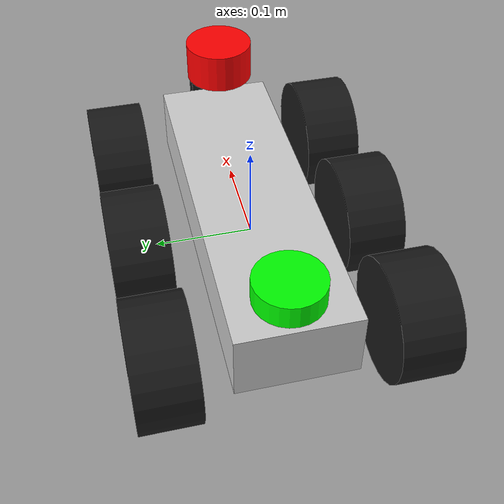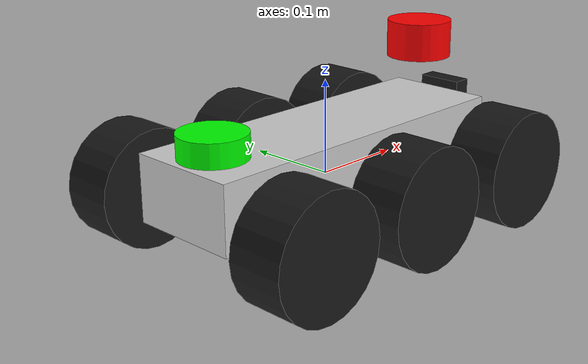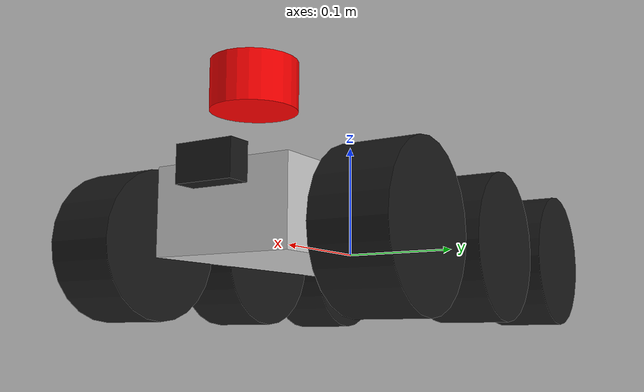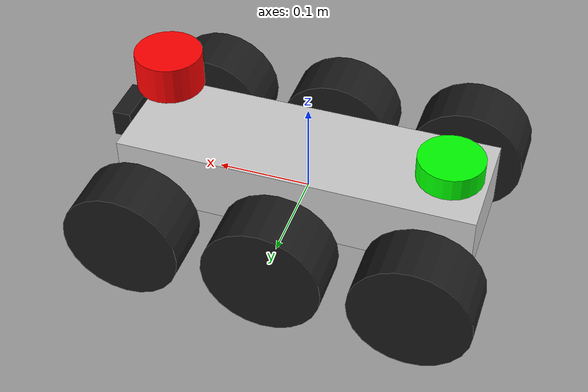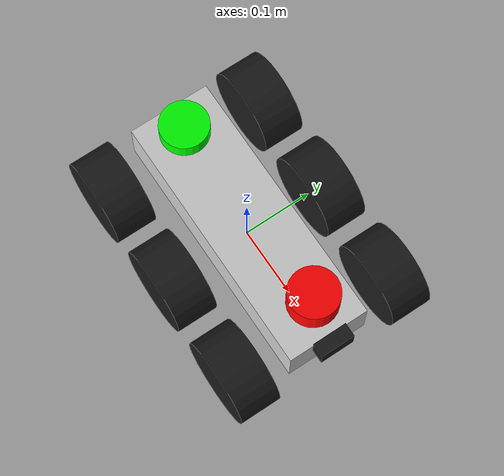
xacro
<?xml version="1.0"?>
<robot name="hexarover" xmlns:xacro="http://www.ros.org/wiki/xacro">

  <!-- ================= WŁAŚCIWOŚCI (PROPERTIES) ================= -->
  <!-- 1. WYMIARY GŁÓWNEJ BRYŁY (PODWOZIA) -->
  <xacro:property name="chassis_length" value="0.38"/>
  <xacro:property name="chassis_width"  value="0.12"/>
  <xacro:property name="chassis_height" value="0.07"/>
  <xacro:property name="chassis_z_offset" value="0.02"/>

  <!-- 2. KOŁA -->
  <xacro:property name="wheel_radius" value="0.0625"/>
  <xacro:property name="wheel_length" value="0.06"/>
  <xacro:property name="wheel_y_offset" value="0.12"/>
  <xacro:property name="axle_x_offset" value="0.15"/>

  <!-- 3. POZYCJA LIDARU -->
  <xacro:property name="lidar_x" value="0.15"/>
  <xacro:property name="lidar_y" value="0.00"/>
  <xacro:property name="lidar_z" value="0.12"/>
  <xacro:property name="lidar_yaw" value="0.0"/>

  <!-- 4. POZYCJA IMU -->
  <xacro:property name="imu_x" value="-0.15"/>
  <xacro:property name="imu_y" value="0.00"/>
  <xacro:property name="imu_z" value="0.06"/>
  <xacro:property name="imu_yaw" value="0.0"/>

  <material name="silver">
    <color rgba="0.8 0.8 0.8 1"/>
  </material>
  <material name="black">
    <color rgba="0.1 0.1 0.1 1"/>
  </material>
  <material name="red">
    <color rgba="1 0 0 1"/>
  </material>
  <material name="green">
    <color rgba="0 1 0 1"/>
  </material>

  <!-- BASE LINK -->
  <link name="base_link">
    <visual>
      <origin xyz="0 0 ${chassis_z_offset}" rpy="0 0 0"/>
      <geometry>
        <box size="${chassis_length} ${chassis_width} ${chassis_height}"/>
      </geometry>
      <material name="silver"/>
    </visual>
    <collision>
      <origin xyz="0 0 ${chassis_z_offset}" rpy="0 0 0"/>
      <geometry>
        <box size="${chassis_length} ${chassis_width} ${chassis_height}"/>
      </geometry>
    </collision>
    <inertial>
      <mass value="5.0"/>
      <inertia ixx="0.04" ixy="0" ixz="0" iyy="0.1" iyz="0" izz="0.1"/>
    </inertial>
  </link>

  <!-- WHEEL MACRO -->
  <xacro:macro name="wheel" params="prefix side x_pos y_pos friction">
    <link name="${prefix}_${side}_wheel">
      <visual>
        <geometry>
          <cylinder radius="${wheel_radius}" length="${wheel_length}"/>
        </geometry>
        <material name="black"/>
      </visual>
      <collision>
        <geometry>
          <cylinder radius="${wheel_radius}" length="${wheel_length}"/>
        </geometry>
      </collision>
      <inertial>
        <mass value="0.8"/>
        <inertia ixx="0.001" ixy="0" ixz="0" iyy="0.001" iyz="0" izz="0.001"/>
      </inertial>
    </link>

    <joint name="${prefix}_${side}_wheel_joint" type="continuous">
      <parent link="base_link"/>
      <child link="${prefix}_${side}_wheel"/>
      <origin xyz="${x_pos} ${y_pos} 0" rpy="-1.5707 0 0"/>
      <axis xyz="0 0 1"/>
    </joint>

    <gazebo reference="${prefix}_${side}_wheel">
      <mu1>${friction}</mu1> <mu2>${friction}</mu2> <material>Gazebo/Black</material>
    </gazebo>
  </xacro:macro>

  <!-- WHEELS INSTANTIATION -->
  <xacro:wheel prefix="mid" side="left"  x_pos="0" y_pos="${wheel_y_offset}" friction="1.0"/>
  <xacro:wheel prefix="mid" side="right" x_pos="0" y_pos="-${wheel_y_offset}" friction="1.0"/>

  <xacro:wheel prefix="front" side="left"  x_pos="${axle_x_offset}"  y_pos="${wheel_y_offset}" friction="0.2"/>
  <xacro:wheel prefix="front" side="right" x_pos="${axle_x_offset}"  y_pos="-${wheel_y_offset}" friction="0.2"/>

  <xacro:wheel prefix="rear" side="left"  x_pos="-${axle_x_offset}" y_pos="${wheel_y_offset}" friction="0.2"/>
  <xacro:wheel prefix="rear" side="right" x_pos="-${axle_x_offset}" y_pos="-${wheel_y_offset}" friction="0.2"/>

  <!-- LIDAR -->
  <link name="lidar_link">
    <visual>
      <geometry>
        <cylinder radius="0.035" length="0.04"/>
      </geometry>
      <material name="red"/>
    </visual>
    <collision>
      <geometry>
        <cylinder radius="0.035" length="0.04"/>
      </geometry>
    </collision>
    <inertial>
      <mass value="0.1"/>
      <inertia ixx="0.0001" ixy="0" ixz="0" iyy="0.0001" iyz="0" izz="0.0001"/>
    </inertial>
  </link>

  <joint name="lidar_joint" type="fixed">
    <parent link="base_link"/>
    <child link="lidar_link"/>
    <origin xyz="${lidar_x} ${lidar_y} ${lidar_z}" rpy="0 0 ${lidar_yaw}"/>
  </joint>

  <!-- IMU -->
  <link name="imu_link">
    <visual>
      <geometry>
         <cylinder radius="0.035" length="0.04"/>
       </geometry>
      <material name="green"/>
    </visual>
    <collision>
      <geometry>
        <cylinder radius="0.035" length="0.02"/>
      </geometry>
    </collision>
    <inertial>
      <mass value="0.01"/>
      <inertia ixx="0.00001" ixy="0" ixz="0" iyy="0.00001" iyz="0" izz="0.00001"/>
    </inertial>
  </link>

  <joint name="imu_joint" type="fixed">
    <parent link="base_link"/>
    <child link="imu_link"/>
    <origin xyz="${imu_x} ${imu_y} ${imu_z}" rpy="0 0 ${imu_yaw}"/>
  </joint>
  <!-- CAMERA -->
  <link name="camera_link">
  <visual>
    <geometry>
      <box size="0.02 0.05 0.03"/>
    </geometry>
    <material name="black"/>
  </visual>
</link>

<joint name="camera_joint" type="fixed">
  <parent link="base_link"/>
  <child link="camera_link"/>
  <origin xyz="0.2 0 0.05" rpy="0 0 0"/>
</joint>
  <!-- GAZEBO PLUGINS -->
  <gazebo>
    <plugin filename="gz-sim-diff-drive-system" name="gz::sim::systems::DiffDrive">
      <left_joint>mid_left_wheel_joint</left_joint>
      <right_joint>mid_right_wheel_joint</right_joint>
      <wheel_separation>${wheel_y_offset * 2}</wheel_separation>
      <wheel_radius>${wheel_radius}</wheel_radius>
      <topic>/cmd_vel</topic>
      <max_linear_acceleration>2.0</max_linear_acceleration>

      <odom_publish_frequency>0</odom_publish_frequency>
      <publish_odom>false</publish_odom>
      <publish_odom_tf>false</publish_odom_tf>

      <child_frame_id>base_link</child_frame_id>
      <odom_topic>odometry_off</odom_topic>
    </plugin>

    <plugin filename="gz-sim-sensors-system" name="gz::sim::systems::Sensors">
      <render_engine>ogre2</render_engine>
    </plugin>

    <plugin filename="gz-sim-joint-state-publisher-system" name="gz::sim::systems::JointStatePublisher">
      <topic>joint_states</topic>
      <update_rate>30</update_rate>
    </plugin>

    <plugin filename="gz-sim-imu-system" name="gz::sim::systems::Imu">
    </plugin>
  </gazebo>

  <!-- GAZEBO SENSORS -->
  <gazebo reference="lidar_link">
    <sensor name="lidar" type="gpu_lidar">
      <pose>0 0 0 0 0 0</pose>
      <always_on>true</always_on>
      <visualize>true</visualize>
      <update_rate>5</update_rate>
      <ray>
        <scan>
          <horizontal>
            <samples>360</samples>
            <resolution>1</resolution>
            <min_angle>-3.14</min_angle>
            <max_angle>3.14</max_angle>
          </horizontal>
        </scan>
        <range>
          <min>0.15</min> <max>10.0</max>
        </range>
      </ray>
      <topic>scan</topic>
      <gz_frame_id>lidar_link</gz_frame_id>
    </sensor>
  </gazebo>

  <gazebo reference="imu_link">
    <sensor name="imu_sensor" type="imu">
      <pose>0 0 0 0 0 0</pose>
      <always_on>true</always_on>
      <visualize>true</visualize>
      <update_rate>5</update_rate>
      <imu>
        <angular_velocity>
          <x>
            <noise type="gaussian"><mean>0.0</mean><stddev>0.0</stddev></noise>
          </x>
          <y>
            <noise type="gaussian"><mean>0.0</mean><stddev>0.0</stddev></noise>
          </y>
          <z>
            <noise type="gaussian"><mean>0.0</mean><stddev>0.0</stddev></noise>
          </z>
        </angular_velocity>
        <linear_acceleration>
          <x>
            <noise type="gaussian"><mean>0.0</mean><stddev>0.0</stddev></noise>
          </x>
          <y>
            <noise type="gaussian"><mean>0.0</mean><stddev>0.0</stddev></noise>
          </y>
          <z>
            <noise type="gaussian"><mean>0.0</mean><stddev>0.0</stddev></noise>
          </z>
        </linear_acceleration>
      </imu>
      <topic>/imu</topic>
      <gz_frame_id>imu_link</gz_frame_id>
    </sensor>
  </gazebo>
  <gazebo reference="camera_link">
  <sensor name="camera" type="camera">
    <camera>
      <horizontal_fov>1.34</horizontal_fov> <image>
        <width>800</width>
        <height>600</height>
        <format>R8G8B8</format>
      </image>
      <clip>
        <near>0.1</near>
        <far>10.0</far>
      </clip>
    </camera>
    <always_on>1</always_on>
    <update_rate>30</update_rate>
    <visualize>true</visualize>
    <topic>image_raw</topic>

  </sensor>
</gazebo>

</robot>
